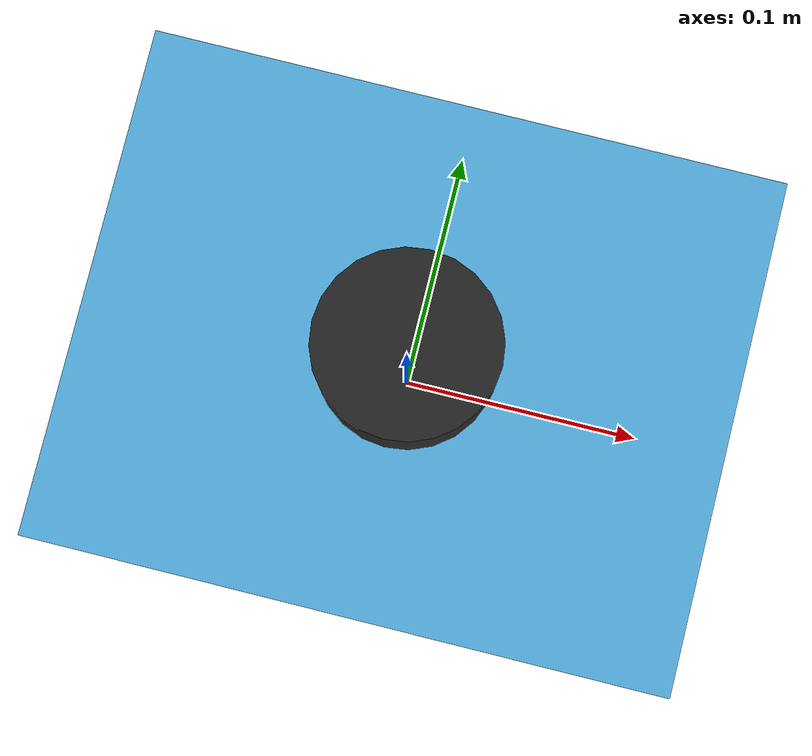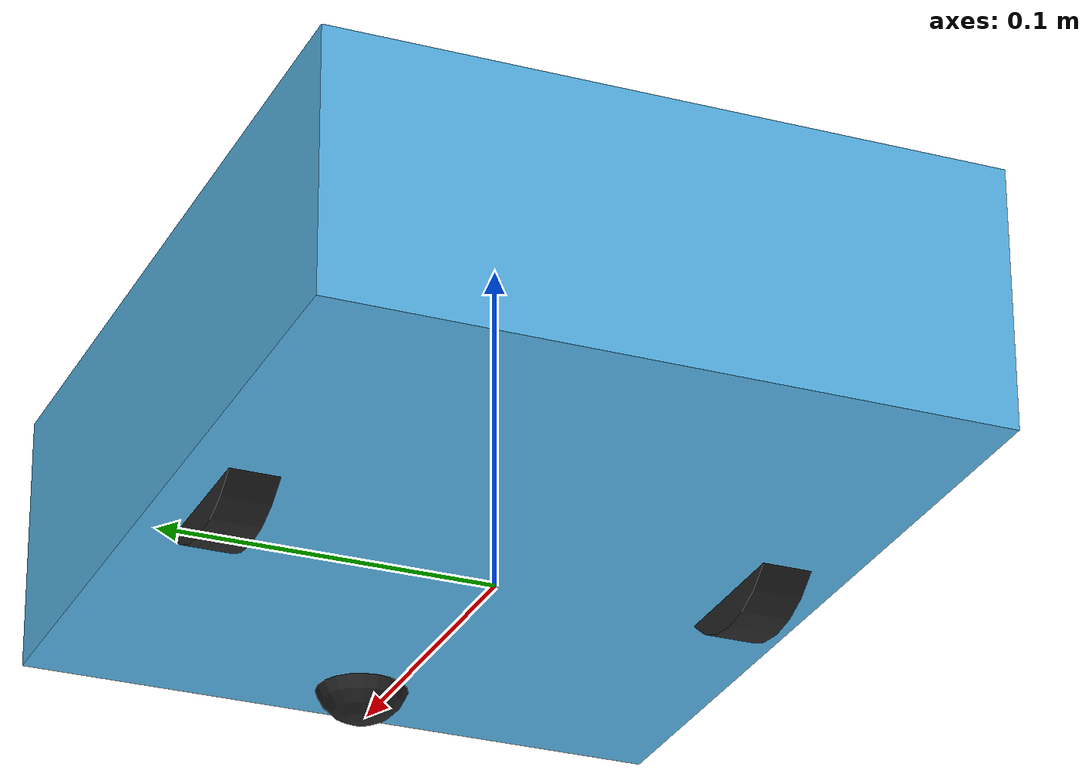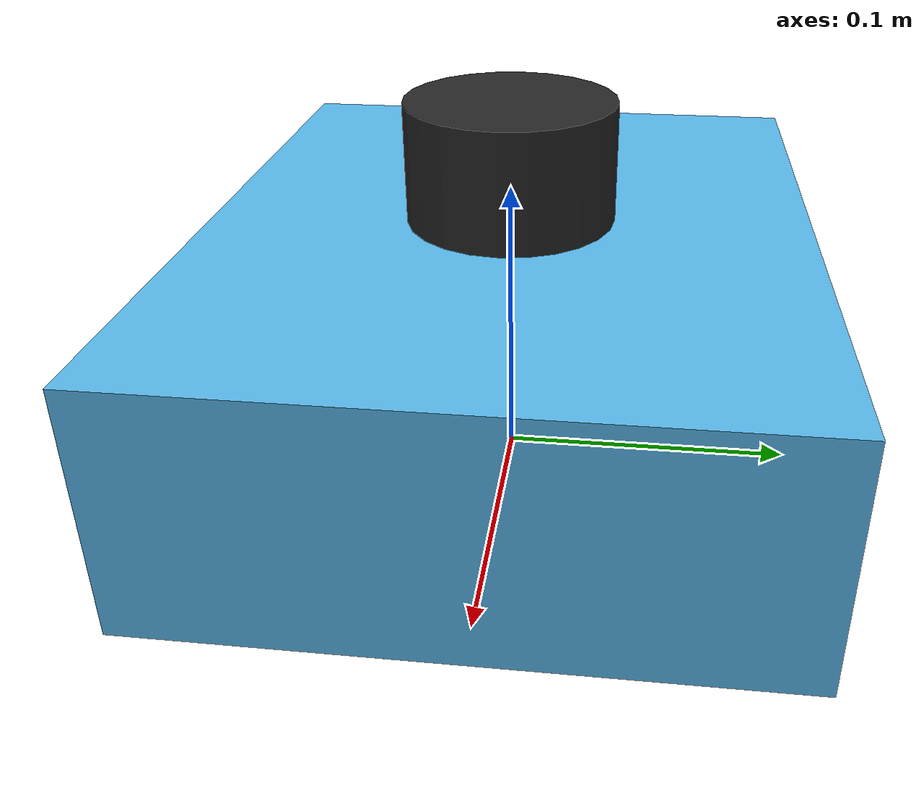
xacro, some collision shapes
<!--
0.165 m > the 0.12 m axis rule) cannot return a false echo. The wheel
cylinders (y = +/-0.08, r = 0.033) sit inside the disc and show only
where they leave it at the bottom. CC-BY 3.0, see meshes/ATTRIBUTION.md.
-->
<?xml version="1.0"?>
<robot name="amr" xmlns:xacro="http://www.ros.org/wiki/xacro">

  <xacro:property name="chassis_l" value="0.25"/>
  <xacro:property name="chassis_w" value="0.20"/>
  <xacro:property name="chassis_h" value="0.08"/>
  <xacro:property name="base_z" value="0.05"/>   <!-- base_link above ground -->
  <xacro:property name="wheel_r" value="0.033"/>
  <xacro:property name="wheel_w" value="0.015"/>
  <xacro:property name="track" value="0.16"/>    <!-- wheel separation -->
  <xacro:property name="caster_r" value="0.015"/>
  <xacro:property name="chassis_mass" value="1.5"/>

  <material name="teal">
    <color rgba="0.05 0.65 0.65 1.0"/>
  </material>
  <material name="dark">
    <color rgba="0.15 0.15 0.15 1.0"/>
  </material>

  <!-- ==================================================================
       Links
       ================================================================== -->
  <link name="base_footprint"/>

  <joint name="base_joint" type="fixed">
    <parent link="base_footprint"/>
    <child link="base_link"/>
    <origin xyz="0 0 ${base_z}" rpy="0 0 0"/>
  </joint>

  <link name="base_link">
    <visual>
      <geometry>
        <mesh filename="file://$(find amr_description)/meshes/create_body.dae"
              scale="0.0254 0.0254 0.0254"/>
      </geometry>
    </visual>
    <collision>
      <geometry>
        <box size="${chassis_l} ${chassis_w} ${chassis_h}"/>
      </geometry>
    </collision>
    <inertial>
      <mass value="${chassis_mass}"/>
      <inertia
        ixx="${chassis_mass / 12.0 * (chassis_w * chassis_w + chassis_h * chassis_h)}"
        iyy="${chassis_mass / 12.0 * (chassis_l * chassis_l + chassis_h * chassis_h)}"
        izz="${chassis_mass / 12.0 * (chassis_l * chassis_l + chassis_w * chassis_w)}"
        ixy="0" ixz="0" iyz="0"/>
    </inertial>
  </link>

  <!-- wheels: cylinder axis along Y, joint axis therefore +Z in the joint frame -->
  <xacro:macro name="wheel" params="side y_sign">
    <link name="wheel_${side}_link">
      <visual>
        <geometry>
          <cylinder radius="${wheel_r}" length="${wheel_w}"/>
        </geometry>
        <material name="dark"/>
      </visual>
      <collision>
        <geometry>
          <cylinder radius="${wheel_r}" length="${wheel_w}"/>
        </geometry>
      </collision>
      <inertial>
        <mass value="0.05"/>
        <inertia ixx="0.00002" iyy="0.00002" izz="0.00003" ixy="0" ixz="0" iyz="0"/>
      </inertial>
    </link>

    <joint name="wheel_${side}_joint" type="continuous">
      <parent link="base_link"/>
      <child link="wheel_${side}_link"/>
      <origin xyz="0 ${y_sign * track / 2.0} ${wheel_r - base_z}" rpy="-1.5708 0 0"/>
      <axis xyz="0 0 1"/>
    </joint>
  </xacro:macro>

  <xacro:wheel side="left" y_sign="1"/>
  <xacro:wheel side="right" y_sign="-1"/>

  <link name="caster_link">
    <visual>
      <geometry>
        <sphere radius="${caster_r}"/>
      </geometry>
      <material name="dark"/>
    </visual>
    <collision>
      <geometry>
        <sphere radius="${caster_r}"/>
      </geometry>
    </collision>
    <inertial>
      <mass value="0.01"/>
      <inertia ixx="0.000001" iyy="0.000001" izz="0.000001" ixy="0" ixz="0" iyz="0"/>
    </inertial>
  </link>
  <joint name="caster_joint" type="fixed">
    <parent link="base_link"/>
    <child link="caster_link"/>
    <origin xyz="${chassis_l / 2.0 - 0.02} 0 ${caster_r - base_z}" rpy="0 0 0"/>
  </joint>

  <!-- LiDAR sits on top of the chassis -->
  <link name="laser_link">
    <visual>
      <geometry>
        <cylinder radius="0.035" length="0.04"/>
      </geometry>
      <material name="dark"/>
    </visual>
    <inertial>
      <mass value="0.05"/>
      <inertia ixx="0.00002" iyy="0.00002" izz="0.00002" ixy="0" ixz="0" iyz="0"/>
    </inertial>
  </link>
  <joint name="laser_joint" type="fixed">
    <parent link="base_link"/>
    <child link="laser_link"/>
    <origin xyz="0 0 ${chassis_h / 2.0 + 0.02}" rpy="0 0 0"/>
  </joint>

  <link name="imu_link">
    <inertial>
      <mass value="0.01"/>
      <inertia ixx="0.000001" iyy="0.000001" izz="0.000001" ixy="0" ixz="0" iyz="0"/>
    </inertial>
  </link>
  <joint name="imu_joint" type="fixed">
    <parent link="base_link"/>
    <child link="imu_link"/>
    <origin xyz="0 0 0.02" rpy="0 0 0"/>
  </joint>

  <!-- ==================================================================
       Gazebo Harmonic systems
       ================================================================== -->
  <gazebo>
    <plugin filename="gz-sim-diff-drive-system" name="gz::sim::systems::DiffDrive">
      <left_joint>wheel_left_joint</left_joint>
      <right_joint>wheel_right_joint</right_joint>
      <wheel_separation>${track}</wheel_separation>
      <wheel_radius>${wheel_r}</wheel_radius>
      <topic>cmd_vel</topic>
      <odom_topic>wheel/odom</odom_topic>
      <odom_frame>odom</odom_frame>
      <child_frame>base_footprint</child_frame>
      <max_linear_acceleration>0.5</max_linear_acceleration>
      <max_angular_acceleration>1.0</max_angular_acceleration>
      <min_velocity>-0.26</min_velocity>
      <max_velocity>0.26</max_velocity>
      <min_angular_velocity>-1.0</min_angular_velocity>
      <max_angular_velocity>1.0</max_angular_velocity>
    </plugin>

    <plugin filename="gz-sim-joint-state-publisher-system"
            name="gz::sim::systems::JointStatePublisher">
      <topic>joint_states</topic>
    </plugin>
  </gazebo>

  <gazebo reference="laser_link">
    <sensor name="lidar" type="gpu_lidar">
      <topic>scan</topic>
      <gz_frame_id>laser_link</gz_frame_id>
      <update_rate>10</update_rate>
      <always_on>1</always_on>
      <visualize>false</visualize>
      <lidar>
        <scan>
          <horizontal>
            <samples>360</samples>
            <resolution>1</resolution>
            <min_angle>-3.14159</min_angle>
            <max_angle>3.14159</max_angle>
          </horizontal>
        </scan>
        <range>
          <min>0.12</min>
          <max>3.5</max>
          <resolution>0.01</resolution>
        </range>
        <noise>
          <type>gaussian</type>
          <mean>0.0</mean>
          <stddev>0.01</stddev>
        </noise>
      </lidar>
    </sensor>
  </gazebo>

  <gazebo reference="imu_link">
    <sensor name="imu_sensor" type="imu">
      <topic>imu/data</topic>
      <gz_frame_id>imu_link</gz_frame_id>
      <update_rate>50</update_rate>
      <always_on>1</always_on>
      <imu>
        <angular_velocity>
          <x><noise type="gaussian"><mean>0.0</mean><stddev>0.0002</stddev></noise></x>
          <y><noise type="gaussian"><mean>0.0</mean><stddev>0.0002</stddev></noise></y>
          <z><noise type="gaussian"><mean>0.0</mean><stddev>0.0002</stddev></noise></z>
        </angular_velocity>
        <linear_acceleration>
          <x><noise type="gaussian"><mean>0.0</mean><stddev>0.002</stddev></noise></x>
          <y><noise type="gaussian"><mean>0.0</mean><stddev>0.002</stddev></noise></y>
          <z><noise type="gaussian"><mean>0.0</mean><stddev>0.002</stddev></noise></z>
        </linear_acceleration>
      </imu>
    </sensor>
  </gazebo>

</robot>
